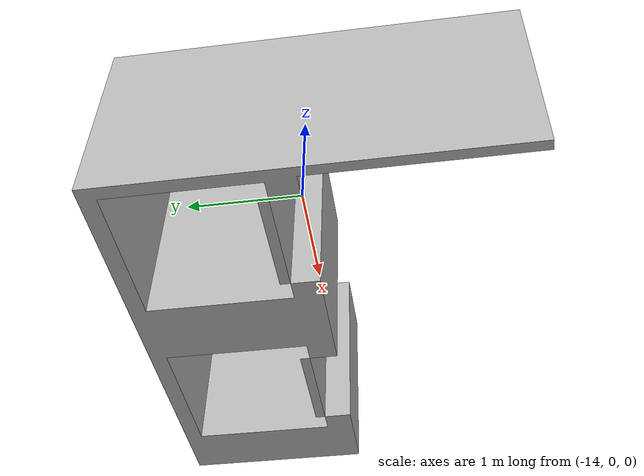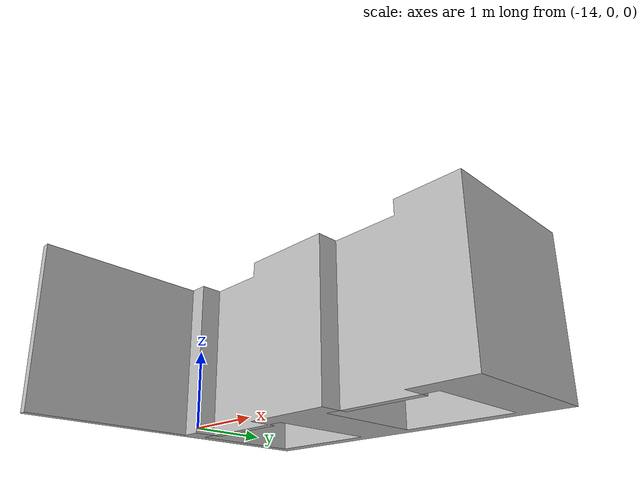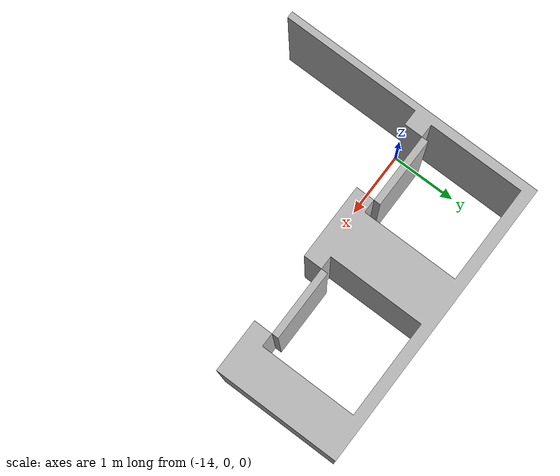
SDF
<?xml version='1.0'?>
<sdf version='1.5'>
  <model name="elevator_cc">
    <static>1</static>

    <link name="link">
      <collision name="collision">
        <pose>-10 0 -0.05 0 0 0</pose>
        <geometry>
          <mesh>
            <uri>model://elevator_cc/meshes/both_closed.stl</uri>
            <scale>0.001 0.001 0.001</scale>
          </mesh>
        </geometry>
        <surface>
            <friction>
                <ode>
                    <mu>10000</mu>
                    <mu2>10000</mu2>
                </ode>
            </friction>
        </surface>
      </collision>
      <visual name="visual">
        <pose>-10 0 -0.05 0 0 0</pose>
        <geometry>
          <mesh>
            <uri>model://elevator_cc/meshes/both_closed.stl</uri>
            <scale>0.001 0.001 0.001</scale>
          </mesh>
        </geometry>
      </visual>
    </link>
  </model>
</sdf>
